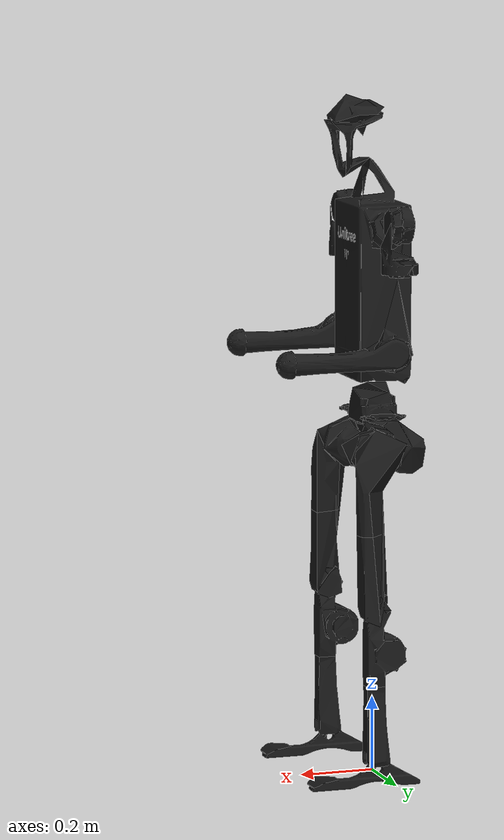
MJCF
<mujoco model="h1_description">
  <compiler angle="radian" meshdir="meshes/" />
  <statistic meansize="0.144785" extent="1.23314" center="0.025392 2.0634e-05 -0.245975" />
  <default>
    <joint damping="0.001" armature="0.01" frictionloss="0.1" />
  </default>
  <asset>
    <mesh name="pelvis" file="pelvis.STL" />
    <mesh name="left_hip_yaw_link" file="left_hip_yaw_link.STL" />
    <mesh name="left_hip_roll_link" file="left_hip_roll_link.STL" />
    <mesh name="left_hip_pitch_link" file="left_hip_pitch_link.STL" />
    <mesh name="left_knee_link" file="left_knee_link.STL" />
    <mesh name="left_ankle_link" file="left_ankle_link.STL" />
    <mesh name="right_hip_yaw_link" file="right_hip_yaw_link.STL" />
    <mesh name="right_hip_roll_link" file="right_hip_roll_link.STL" />
    <mesh name="right_hip_pitch_link" file="right_hip_pitch_link.STL" />
    <mesh name="right_knee_link" file="right_knee_link.STL" />
    <mesh name="right_ankle_link" file="right_ankle_link.STL" />
    <mesh name="torso_link" file="torso_link.STL" />
    <mesh name="left_shoulder_pitch_link" file="left_shoulder_pitch_link.STL" />
    <mesh name="left_shoulder_roll_link" file="left_shoulder_roll_link.STL" />
    <mesh name="left_shoulder_yaw_link" file="left_shoulder_yaw_link.STL" />
    <mesh name="left_elbow_link" file="left_elbow_link.STL" />
    <mesh name="right_shoulder_pitch_link" file="right_shoulder_pitch_link.STL" />
    <mesh name="right_shoulder_roll_link" file="right_shoulder_roll_link.STL" />
    <mesh name="right_shoulder_yaw_link" file="right_shoulder_yaw_link.STL" />
    <mesh name="right_elbow_link" file="right_elbow_link.STL" />
    <mesh name="logo_link" file="logo_link.STL" />
    <mesh name="left_hip_pitch_link_upper" file="left_hip_pitch_link_upper.STL" />
    <mesh name="left_hip_pitch_link_lower" file="left_hip_pitch_link_lower.STL" />
    <mesh name="left_knee_link_upper" file="left_knee_link_upper.STL" />
    <mesh name="left_knee_link_lower" file="left_knee_link_lower.STL" />
    <mesh name="right_hip_pitch_link_upper" file="right_hip_pitch_link_upper.STL" />
    <mesh name="right_hip_pitch_link_lower" file="right_hip_pitch_link_lower.STL" />
    <mesh name="right_knee_link_upper" file="right_knee_link_upper.STL" />
    <mesh name="right_knee_link_lower" file="right_knee_link_lower.STL" />
  </asset>
  <worldbody>
    <body name="pelvis" pos="0 0 1.05">
      <inertial pos="0.0097494 0.00167425 0.174644" quat="0.999936 -0.00259707 -0.0109997 -7.79805e-05" mass="29.847" diaginertia="1.32807 0.960733 0.53795" />
      <joint name="floating_base_joint" type="free" limited="false" actuatorfrclimited="false" />
      <geom type="mesh" contype="0" conaffinity="0" group="1" density="0" rgba="0.1 0.1 0.1 1" mesh="pelvis" />
      <geom type="mesh" rgba="0.1 0.1 0.1 1" mesh="pelvis" />
      <geom type="mesh" contype="0" conaffinity="0" group="1" density="0" rgba="0.1 0.1 0.1 1" mesh="torso_link" />
      <geom type="mesh" rgba="0.1 0.1 0.1 1" mesh="torso_link" />
      <geom pos="0.0055 0.15535 0.42999" quat="0.976296 0.216438 0 0" type="mesh" contype="0" conaffinity="0" group="1" density="0" rgba="0.1 0.1 0.1 1" mesh="left_shoulder_pitch_link" />
      <geom pos="0.0055 0.15535 0.42999" quat="0.976296 0.216438 0 0" type="mesh" rgba="0.1 0.1 0.1 1" mesh="left_shoulder_pitch_link" />
      <geom pos="0 0.21353 0.438914" type="mesh" contype="0" conaffinity="0" group="1" density="0" rgba="0.1 0.1 0.1 1" mesh="left_shoulder_roll_link" />
      <geom pos="0 0.21353 0.438914" type="mesh" rgba="0.1 0.1 0.1 1" mesh="left_shoulder_roll_link" />
      <geom pos="0 0.21353 0.304614" quat="1 0 0 0" type="mesh" contype="0" conaffinity="0" group="1" density="0" rgba="0.1 0.1 0.1 1" mesh="left_shoulder_yaw_link" />
      <geom pos="0 0.21353 0.304614" quat="1 0 0 0" type="mesh" rgba="0.1 0.1 0.1 1" mesh="left_shoulder_yaw_link" />
      <geom pos="0.0185 0.21353 0.106614" quat="1 0 0 0" type="mesh" contype="0" conaffinity="0" group="1" density="0" rgba="0.1 0.1 0.1 1" mesh="left_elbow_link" />
      <geom pos="0.0185 0.21353 0.106614" quat="1 0 0 0" type="mesh" rgba="0.1 0.1 0.1 1" mesh="left_elbow_link" />
      <geom pos="0.0055 -0.15535 0.42999" quat="0.976296 -0.216438 0 0" type="mesh" contype="0" conaffinity="0" group="1" density="0" rgba="0.1 0.1 0.1 1" mesh="right_shoulder_pitch_link" />
      <geom pos="0.0055 -0.15535 0.42999" quat="0.976296 -0.216438 0 0" type="mesh" rgba="0.1 0.1 0.1 1" mesh="right_shoulder_pitch_link" />
      <geom pos="0 -0.21353 0.438914" quat="1 0 0 0" type="mesh" contype="0" conaffinity="0" group="1" density="0" rgba="0.1 0.1 0.1 1" mesh="right_shoulder_roll_link" />
      <geom pos="0 -0.21353 0.438914" quat="1 0 0 0" type="mesh" rgba="0.1 0.1 0.1 1" mesh="right_shoulder_roll_link" />
      <geom pos="0 -0.21353 0.304614" quat="1 0 0 0" type="mesh" contype="0" conaffinity="0" group="1" density="0" rgba="0.1 0.1 0.1 1" mesh="right_shoulder_yaw_link" />
      <geom pos="0 -0.21353 0.304614" quat="1 0 0 0" type="mesh" rgba="0.1 0.1 0.1 1" mesh="right_shoulder_yaw_link" />
      <geom pos="0.0185 -0.21353 0.106614" quat="1 0 0 0" type="mesh" contype="0" conaffinity="0" group="1" density="0" rgba="0.1 0.1 0.1 1" mesh="right_elbow_link" />
      <geom pos="0.0185 -0.21353 0.106614" quat="1 0 0 0" type="mesh" rgba="0.1 0.1 0.1 1" mesh="right_elbow_link" />
      <geom type="mesh" contype="0" conaffinity="0" group="1" density="0" rgba="1 1 1 1" mesh="logo_link" />
      <body name="left_hip_yaw_link" pos="0 0.0875 -0.1742">
        <inertial pos="-0.04923 0.0001 0.0072" quat="0.69699 0.219193 0.233287 0.641667" mass="2.244" diaginertia="0.00304494 0.00296885 0.00189201" />
        <joint name="left_hip_yaw_joint" pos="0 0 0" axis="0 0 1" range="-0.43 0.43" actuatorfrcrange="-200 200" />
        <geom type="mesh" contype="0" conaffinity="0" group="1" density="0" rgba="0.1 0.1 0.1 1" mesh="left_hip_yaw_link" />
        <body name="left_hip_roll_link" pos="0.039468 0 0">
          <inertial pos="-0.0058 -0.00319 -9e-05" quat="0.0438242 0.70721 -0.0729075 0.701867" mass="2.232" diaginertia="0.00243264 0.00225325 0.00205492" />
          <joint name="left_hip_roll_joint" pos="0 0 0" axis="1 0 0" range="-0.43 0.43" actuatorfrcrange="-200 200" />
          <geom type="mesh" contype="0" conaffinity="0" group="1" density="0" rgba="0.1 0.1 0.1 1" mesh="left_hip_roll_link" />
          <geom type="mesh" rgba="0.1 0.1 0.1 1" mesh="left_hip_roll_link" />
          <body name="left_hip_pitch_link" pos="0 0.11536 0">
            <inertial pos="0.00102194 -0.0305212 0.0032369" quat="0.979828 0.0513522 -0.0169854 -0.192382" mass="2.81747" diaginertia="0.0562885 0.0557425 0.00346693" />
            <joint name="left_hip_pitch_joint" pos="0 0 0" axis="0 1 0" range="-1.57 1.57" actuatorfrcrange="-200 200" />
            <geom type="mesh" contype="0" conaffinity="0" group="1" density="0" rgba="0.1 0.1 0.1 1" mesh="left_hip_pitch_link_upper" />
            <geom type="mesh" rgba="0.1 0.1 0.1 1" mesh="left_hip_pitch_link_upper" />
            <body name="left_hip_pitch_link_lower" pos="0 0 -0.2">
              <inertial pos="0.0210521 -0.00855242 -0.0617351" quat="0.979828 0.0513522 -0.0169854 -0.192382" mass="1.33453" diaginertia="0.0266618 0.0264032 0.00164216" />
              <joint name="left_hip_pitch_link_yield_pitch" type="hinge" axis="0 1 0" range="-1.3 1.3" stiffness="20000" damping="40" armature="0.1" actuatorfrclimited="false" />
              <joint name="left_hip_pitch_link_yield_roll" type="hinge" axis="1 0 0" range="-1.3 1.3" stiffness="20000" damping="40" armature="0.1" actuatorfrclimited="false" />
              <geom type="mesh" contype="0" conaffinity="0" group="1" density="0" rgba="0.1 0.1 0.1 1" mesh="left_hip_pitch_link_lower" />
              <geom type="mesh" rgba="0.1 0.1 0.1 1" mesh="left_hip_pitch_link_lower" />
              <body name="left_knee_link" pos="0 0 -0.2">
                <inertial pos="-0.0079394 -0.00612598 -0.0527434" quat="0.626132 -0.034227 -0.0416277 0.777852" mass="1.05768" diaginertia="0.00769669 0.00756561 0.00119399" />
                <joint name="left_knee_joint" pos="0 0 0" axis="0 1 0" range="-0.26 2.05" actuatorfrcrange="-300 300" />
                <geom type="mesh" contype="0" conaffinity="0" group="1" density="0" rgba="0.1 0.1 0.1 1" mesh="left_knee_link_upper" />
                <geom type="mesh" rgba="0.1 0.1 0.1 1" mesh="left_knee_link_upper" />
                <body name="left_knee_link_lower" pos="0 0 -0.2">
                  <inertial pos="0.0091309 -0.00351595 -0.07498" quat="0.626132 -0.034227 -0.0416277 0.777852" mass="0.663325" diaginertia="0.00482701 0.00474479 0.000748813" />
                  <joint name="left_knee_link_yield_pitch" type="hinge" axis="0 1 0" range="-1.3 1.3" stiffness="20000" damping="40" armature="0.1" actuatorfrclimited="false" />
                  <joint name="left_knee_link_yield_roll" type="hinge" axis="1 0 0" range="-1.3 1.3" stiffness="20000" damping="40" armature="0.1" actuatorfrclimited="false" />
                  <geom type="mesh" contype="0" conaffinity="0" group="1" density="0" rgba="0.1 0.1 0.1 1" mesh="left_knee_link_lower" />
                  <geom type="mesh" rgba="0.1 0.1 0.1 1" mesh="left_knee_link_lower" />
                  <body name="left_ankle_link" pos="0 0 -0.2">
                    <inertial pos="0.048568 0 -0.045609" quat="0.489385 0.510394 0.510394 0.489385" mass="0.552448" diaginertia="0.00362 0.00355701 0.000149987" />
                    <joint name="left_ankle_joint" pos="0 0 0" axis="0 1 0" range="-0.87 0.52" actuatorfrcrange="-40 40" />
                    <geom type="mesh" contype="0" conaffinity="0" group="1" density="0" rgba="0.1 0.1 0.1 1" mesh="left_ankle_link" />
                    <geom type="mesh" rgba="0.1 0.1 0.1 1" mesh="left_ankle_link" />
                  </body>
                </body>
              </body>
            </body>
          </body>
        </body>
      </body>
      <body name="right_hip_yaw_link" pos="0 -0.0875 -0.1742">
        <inertial pos="-0.04923 -0.0001 0.0072" quat="0.641667 0.233287 0.219193 0.69699" mass="2.244" diaginertia="0.00304494 0.00296885 0.00189201" />
        <joint name="right_hip_yaw_joint" pos="0 0 0" axis="0 0 1" range="-0.43 0.43" actuatorfrcrange="-200 200" />
        <geom type="mesh" contype="0" conaffinity="0" group="1" density="0" rgba="0.1 0.1 0.1 1" mesh="right_hip_yaw_link" />
        <body name="right_hip_roll_link" pos="0.039468 0 0">
          <inertial pos="-0.0058 0.00319 -9e-05" quat="-0.0438242 0.70721 0.0729075 0.701867" mass="2.232" diaginertia="0.00243264 0.00225325 0.00205492" />
          <joint name="right_hip_roll_joint" pos="0 0 0" axis="1 0 0" range="-0.43 0.43" actuatorfrcrange="-200 200" />
          <geom type="mesh" contype="0" conaffinity="0" group="1" density="0" rgba="0.1 0.1 0.1 1" mesh="right_hip_roll_link" />
          <geom type="mesh" rgba="0.1 0.1 0.1 1" mesh="right_hip_roll_link" />
          <body name="right_hip_pitch_link" pos="0 -0.11536 0">
            <inertial pos="0.00168742 0.0326094 0.0202256" quat="0.979828 -0.0513522 -0.0169854 0.192382" mass="2.55693" diaginertia="0.0510834 0.0505879 0.00314634" />
            <joint name="right_hip_pitch_joint" pos="0 0 0" axis="0 1 0" range="-1.57 1.57" actuatorfrcrange="-200 200" />
            <geom type="mesh" contype="0" conaffinity="0" group="1" density="0" rgba="0.1 0.1 0.1 1" mesh="right_hip_pitch_link_upper" />
            <geom type="mesh" rgba="0.1 0.1 0.1 1" mesh="right_hip_pitch_link_upper" />
            <body name="right_hip_pitch_link_lower" pos="0 0 -0.2">
              <inertial pos="0.0167136 0.00879319 -0.0456882" quat="0.979828 -0.0513522 -0.0169854 0.192382" mass="1.59507" diaginertia="0.0318669 0.0315578 0.00196275" />
              <joint name="right_hip_pitch_link_yield_pitch" type="hinge" axis="0 1 0" range="-1.3 1.3" stiffness="20000" damping="40" armature="0.1" actuatorfrclimited="false" />
              <joint name="right_hip_pitch_link_yield_roll" type="hinge" axis="1 0 0" range="-1.3 1.3" stiffness="20000" damping="40" armature="0.1" actuatorfrclimited="false" />
              <geom type="mesh" contype="0" conaffinity="0" group="1" density="0" rgba="0.1 0.1 0.1 1" mesh="right_hip_pitch_link_lower" />
              <geom type="mesh" rgba="0.1 0.1 0.1 1" mesh="right_hip_pitch_link_lower" />
              <body name="right_knee_link" pos="0 0 -0.2">
                <inertial pos="-0.00777091 0.00623291 -0.0539655" quat="0.777852 -0.0416277 -0.034227 0.626132" mass="1.06535" diaginertia="0.00775255 0.00762051 0.00120265" />
                <joint name="right_knee_joint" pos="0 0 0" axis="0 1 0" range="-0.26 2.05" actuatorfrcrange="-300 300" />
                <geom type="mesh" contype="0" conaffinity="0" group="1" density="0" rgba="0.1 0.1 0.1 1" mesh="right_knee_link_upper" />
                <geom type="mesh" rgba="0.1 0.1 0.1 1" mesh="right_knee_link_upper" />
                <body name="right_knee_link_lower" pos="0 0 -0.2">
                  <inertial pos="0.00905696 0.00331165 -0.075596" quat="0.777852 -0.0416277 -0.034227 0.626132" mass="0.655649" diaginertia="0.00477115 0.00468989 0.000740148" />
                  <joint name="right_knee_link_yield_pitch" type="hinge" axis="0 1 0" range="-1.3 1.3" stiffness="20000" damping="40" armature="0.1" actuatorfrclimited="false" />
                  <joint name="right_knee_link_yield_roll" type="hinge" axis="1 0 0" range="-1.3 1.3" stiffness="20000" damping="40" armature="0.1" actuatorfrclimited="false" />
                  <geom type="mesh" contype="0" conaffinity="0" group="1" density="0" rgba="0.1 0.1 0.1 1" mesh="right_knee_link_lower" />
                  <geom type="mesh" rgba="0.1 0.1 0.1 1" mesh="right_knee_link_lower" />
                  <body name="right_ankle_link" pos="0 0 -0.2">
                    <inertial pos="0.048568 0 -0.045609" quat="0.489385 0.510394 0.510394 0.489385" mass="0.552448" diaginertia="0.00362 0.00355701 0.000149987" />
                    <joint name="right_ankle_joint" pos="0 0 0" axis="0 1 0" range="-0.87 0.52" actuatorfrcrange="-40 40" />
                    <geom type="mesh" contype="0" conaffinity="0" group="1" density="0" rgba="0.1 0.1 0.1 1" mesh="right_ankle_link" />
                    <geom type="mesh" rgba="0.1 0.1 0.1 1" mesh="right_ankle_link" />
                  </body>
                </body>
              </body>
            </body>
          </body>
        </body>
      </body>
    </body>
  </worldbody>
  <actuator>
    <motor name="left_hip_yaw_joint" joint="left_hip_yaw_joint" />
    <motor name="left_hip_roll_joint" joint="left_hip_roll_joint" />
    <motor name="left_hip_pitch_joint" joint="left_hip_pitch_joint" />
    <motor name="left_knee_joint" joint="left_knee_joint" />
    <motor name="left_ankle_joint" joint="left_ankle_joint" />
    <motor name="right_hip_yaw_joint" joint="right_hip_yaw_joint" />
    <motor name="right_hip_roll_joint" joint="right_hip_roll_joint" />
    <motor name="right_hip_pitch_joint" joint="right_hip_pitch_joint" />
    <motor name="right_knee_joint" joint="right_knee_joint" />
    <motor name="right_ankle_joint" joint="right_ankle_joint" />
  </actuator>
</mujoco>
